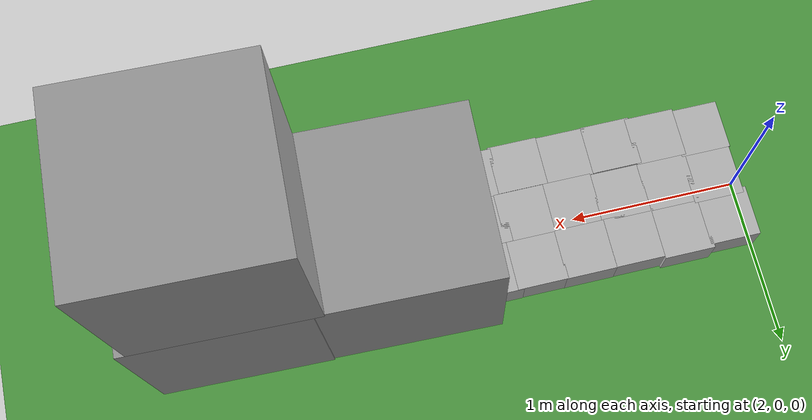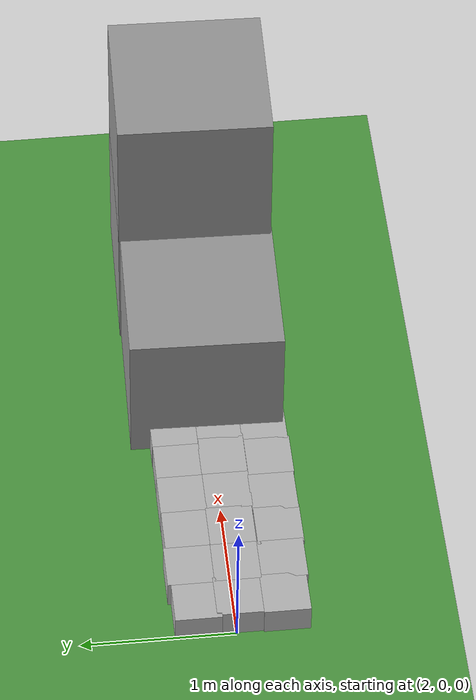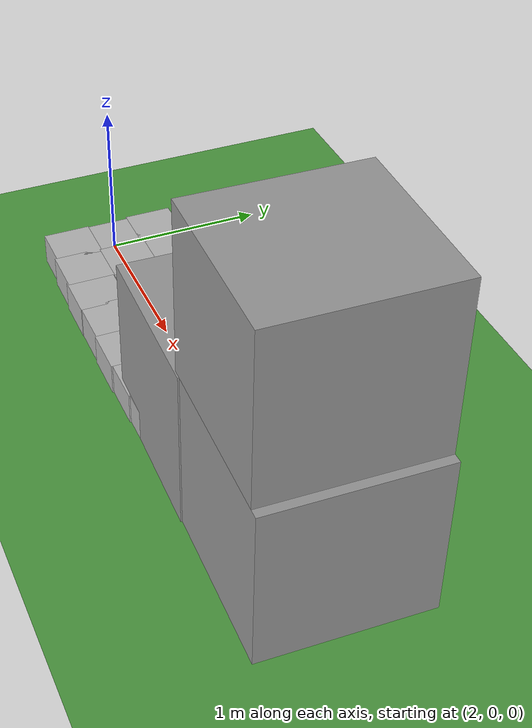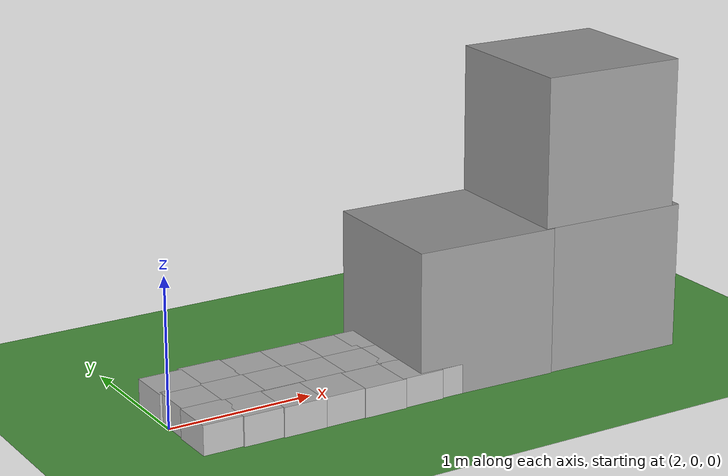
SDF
<sdf version="1.6">
 <world name="default">
  <spherical_coordinates>
   <surface_model>EARTH_WGS84</surface_model>
   <latitude_deg>37.4118</latitude_deg>
   <longitude_deg>-121.996</longitude_deg>
   <elevation>0</elevation>
   <heading_deg>0</heading_deg>
  </spherical_coordinates>
  <physics name="default_physics" default="0" type="ode">
   <ode>
    <solver>
     <type>quick</type>
     <iters>50</iters>
     <sor>1</sor>
     <use_dynamic_moi_rescaling>0</use_dynamic_moi_rescaling>
    </solver>
    <constraints>
     <cfm>0</cfm>
     <erp>0.2</erp>
     <contact_max_correcting_vel>1000</contact_max_correcting_vel>
     <contact_surface_layer>0.001</contact_surface_layer>
    </constraints>
   </ode>
   <max_step_size>0.004</max_step_size>
   <real_time_factor>1</real_time_factor>
   <real_time_update_rate>250</real_time_update_rate>
  </physics>
  <scene><shadows>0</shadows><ambient>0.4 0.4 0.4 1</ambient><background>0.7 0.7 0.7 1</background></scene>
  <light name="sun" type="directional">
   <pose>250 250 600 0 -0 0</pose>
   <diffuse>0.8 0.8 0.8 1</diffuse>
   <specular>0.2 0.2 0.2 1</specular>
   <attenuation>
    <range>1000</range>
    <constant>0.9</constant>
    <linear>0.01</linear>
    <quadratic>0.001</quadratic>
   </attenuation>
   <direction>0 0 -1</direction>
  </light>
  <model name="ground_plane">
   <static>1</static>
   <link name="link">
    <collision name="collision">
     <geometry><plane><normal>0 0 1</normal><size>250 250</size></plane></geometry>
     <surface><friction><ode><mu>1</mu><mu2>1</mu2></ode></friction></surface>
    </collision>
    <visual name="grass">
     <cast_shadows>0</cast_shadows>
     <geometry><plane><normal>0 0 1</normal><size>150 250</size></plane></geometry>
     <material>
      <script><uri>file://media/materials/scripts/Gazebo.material</uri><name>Gazebo/Grass</name></script>
     </material>
    </visual>
   </link>
  </model>
  <gravity>0 0 -9.8066</gravity>
  <magnetic_field>6e-06 2.3e-05 -4.2e-05</magnetic_field>
  <atmosphere type="adiabatic"/>
  <audio><device>default</device></audio>
  <model name="black_cube_30cm">
   <static>1</static>
   <link name="link">
    <pose>0 0 0.1 0 -0 0</pose>
    <inertial>
     <mass>0.5167</mass>
     <inertia>
      <ixx>0.000861167</ixx>
      <ixy>0</ixy>
      <ixz>0</ixz>
      <iyy>0.000861167</iyy>
      <iyz>0</iyz>
      <izz>0.000861167</izz>
     </inertia>
    </inertial>
    <visual name="visual">
     <geometry><box><size>0.3 0.3 0.2</size></box></geometry>
     <material>
      <script>
       <uri>model://black_object/scripts</uri>
       <uri>model://black_object/materials/textures</uri>
       <name>BlackObject/Image</name>
      </script>
     </material>
    </visual>
   </link>
   <pose>2.15495 -0.023439 0 0 -0 0</pose>
  </model>
  <model name="black_cube_30cm_0">
   <static>1</static>
   <link name="link">
    <pose>0 0 0.1 0 -0 0</pose>
    <inertial>
     <mass>0.5167</mass>
     <inertia>
      <ixx>0.000861167</ixx>
      <ixy>0</ixy>
      <ixz>0</ixz>
      <iyy>0.000861167</iyy>
      <iyz>0</iyz>
      <izz>0.000861167</izz>
     </inertia>
    </inertial>
    <visual name="visual">
     <geometry><box><size>0.3 0.3 0.2</size></box></geometry>
     <material>
      <script>
       <uri>model://black_object/scripts</uri>
       <uri>model://black_object/materials/textures</uri>
       <name>BlackObject/Image</name>
      </script>
     </material>
    </visual>
   </link>
   <pose>2.42599 -0.034731 0 0 -0 0</pose>
  </model>
  <model name="black_cube_30cm_1">
   <static>1</static>
   <link name="link">
    <pose>0 0 0.1 0 -0 0</pose>
    <inertial>
     <mass>0.5167</mass>
     <inertia>
      <ixx>0.000861167</ixx>
      <ixy>0</ixy>
      <ixz>0</ixz>
      <iyy>0.000861167</iyy>
      <iyz>0</iyz>
      <izz>0.000861167</izz>
     </inertia>
    </inertial>
    <visual name="visual">
     <geometry><box><size>0.3 0.3 0.2</size></box></geometry>
     <material>
      <script>
       <uri>model://black_object/scripts</uri>
       <uri>model://black_object/materials/textures</uri>
       <name>BlackObject/Image</name>
      </script>
     </material>
    </visual>
   </link>
   <pose>2.72038 -0.037103 0 0 -0 0</pose>
  </model>
  <model name="black_cube_30cm_2">
   <static>1</static>
   <link name="link">
    <pose>0 0 0.1 0 -0 0</pose>
    <inertial>
     <mass>0.5167</mass>
     <inertia>
      <ixx>0.000861167</ixx>
      <ixy>0</ixy>
      <ixz>0</ixz>
      <iyy>0.000861167</iyy>
      <iyz>0</iyz>
      <izz>0.000861167</izz>
     </inertia>
    </inertial>
    <visual name="visual">
     <geometry><box><size>0.3 0.3 0.2</size></box></geometry>
     <material>
      <script>
       <uri>model://black_object/scripts</uri>
       <uri>model://black_object/materials/textures</uri>
       <name>BlackObject/Image</name>
      </script>
     </material>
    </visual>
   </link>
   <pose>3.0113 -0.045083 0 0 -0 0</pose>
  </model>
  <model name="black_cube_30cm_3">
   <static>1</static>
   <link name="link">
    <pose>0 0 0.1 0 -0 0</pose>
    <inertial>
     <mass>0.5167</mass>
     <inertia>
      <ixx>0.000861167</ixx>
      <ixy>0</ixy>
      <ixz>0</ixz>
      <iyy>0.000861167</iyy>
      <iyz>0</iyz>
      <izz>0.000861167</izz>
     </inertia>
    </inertial>
    <visual name="visual">
     <geometry><box><size>0.3 0.3 0.2</size></box></geometry>
     <material>
      <script>
       <uri>model://black_object/scripts</uri>
       <uri>model://black_object/materials/textures</uri>
       <name>BlackObject/Image</name>
      </script>
     </material>
    </visual>
   </link>
   <pose>3.30286 -0.043543 0 0 -0 0</pose>
  </model>
  <model name="black_cube_30cm_4">
   <static>1</static>
   <link name="link">
    <pose>0 0 0.1 0 -0 0</pose>
    <inertial>
     <mass>0.5167</mass>
     <inertia>
      <ixx>0.000861167</ixx>
      <ixy>0</ixy>
      <ixz>0</ixz>
      <iyy>0.000861167</iyy>
      <iyz>0</iyz>
      <izz>0.000861167</izz>
     </inertia>
    </inertial>
    <visual name="visual">
     <geometry><box><size>0.3 0.3 0.2</size></box></geometry>
     <material>
      <script>
       <uri>model://black_object/scripts</uri>
       <uri>model://black_object/materials/textures</uri>
       <name>BlackObject/Image</name>
      </script>
     </material>
    </visual>
   </link>
   <pose>2.13732 0.243558 0 0 -0 0</pose>
  </model>
  <model name="black_cube_30cm_5">
   <static>1</static>
   <link name="link">
    <pose>0 0 0.1 0 -0 0</pose>
    <inertial>
     <mass>0.5167</mass>
     <inertia>
      <ixx>0.000861167</ixx>
      <ixy>0</ixy>
      <ixz>0</ixz>
      <iyy>0.000861167</iyy>
      <iyz>0</iyz>
      <izz>0.000861167</izz>
     </inertia>
    </inertial>
    <visual name="visual">
     <geometry><box><size>0.3 0.3 0.2</size></box></geometry>
     <material>
      <script>
       <uri>model://black_object/scripts</uri>
       <uri>model://black_object/materials/textures</uri>
       <name>BlackObject/Image</name>
      </script>
     </material>
    </visual>
   </link>
   <pose>2.42022 0.264609 0 0 -0 0</pose>
  </model>
  <model name="black_cube_30cm_5_clone">
   <static>1</static>
   <link name="link">
    <pose>0 0 0.1 0 -0 0</pose>
    <inertial>
     <mass>0.5167</mass>
     <inertia>
      <ixx>0.000861167</ixx>
      <ixy>0</ixy>
      <ixz>0</ixz>
      <iyy>0.000861167</iyy>
      <iyz>0</iyz>
      <izz>0.000861167</izz>
     </inertia>
    </inertial>
    <visual name="visual">
     <geometry><box><size>0.3 0.3 0.2</size></box></geometry>
     <material>
      <script>
       <uri>model://black_object/scripts</uri>
       <uri>model://black_object/materials/textures</uri>
       <name>BlackObject/Image</name>
      </script>
     </material>
    </visual>
   </link>
   <pose>2.71085 0.250793 0 0 -0 0</pose>
  </model>
  <model name="black_cube_30cm_5_clone_0">
   <static>1</static>
   <link name="link">
    <pose>0 0 0.1 0 -0 0</pose>
    <inertial>
     <mass>0.5167</mass>
     <inertia>
      <ixx>0.000861167</ixx>
      <ixy>0</ixy>
      <ixz>0</ixz>
      <iyy>0.000861167</iyy>
      <iyz>0</iyz>
      <izz>0.000861167</izz>
     </inertia>
    </inertial>
    <visual name="visual">
     <geometry><box><size>0.3 0.3 0.2</size></box></geometry>
     <material>
      <script>
       <uri>model://black_object/scripts</uri>
       <uri>model://black_object/materials/textures</uri>
       <name>BlackObject/Image</name>
      </script>
     </material>
    </visual>
   </link>
   <pose>3.00932 0.252318 0 0 -0 0</pose>
  </model>
  <model name="black_cube_30cm_5_clone_1">
   <static>1</static>
   <link name="link">
    <pose>0 0 0.1 0 -0 0</pose>
    <inertial>
     <mass>0.5167</mass>
     <inertia>
      <ixx>0.000861167</ixx>
      <ixy>0</ixy>
      <ixz>0</ixz>
      <iyy>0.000861167</iyy>
      <iyz>0</iyz>
      <izz>0.000861167</izz>
     </inertia>
    </inertial>
    <visual name="visual">
     <geometry><box><size>0.3 0.3 0.2</size></box></geometry>
     <material>
      <script>
       <uri>model://black_object/scripts</uri>
       <uri>model://black_object/materials/textures</uri>
       <name>BlackObject/Image</name>
      </script>
     </material>
    </visual>
   </link>
   <pose>3.30026 0.251176 0 0 -0 0</pose>
  </model>
  <model name="black_cube_30cm_5_clone_2">
   <static>1</static>
   <link name="link">
    <pose>0 0 0.1 0 -0 0</pose>
    <inertial>
     <mass>0.5167</mass>
     <inertia>
      <ixx>0.000861167</ixx>
      <ixy>0</ixy>
      <ixz>0</ixz>
      <iyy>0.000861167</iyy>
      <iyz>0</iyz>
      <izz>0.000861167</izz>
     </inertia>
    </inertial>
    <visual name="visual">
     <geometry><box><size>0.3 0.3 0.2</size></box></geometry>
     <material>
      <script>
       <uri>model://black_object/scripts</uri>
       <uri>model://black_object/materials/textures</uri>
       <name>BlackObject/Image</name>
      </script>
     </material>
    </visual>
   </link>
   <pose>2.14623 -0.321855 0 0 -0 0</pose>
  </model>
  <model name="black_cube_30cm_5_clone_3">
   <static>1</static>
   <link name="link">
    <pose>0 0 0.1 0 -0 0</pose>
    <inertial>
     <mass>0.5167</mass>
     <inertia>
      <ixx>0.000861167</ixx>
      <ixy>0</ixy>
      <ixz>0</ixz>
      <iyy>0.000861167</iyy>
      <iyz>0</iyz>
      <izz>0.000861167</izz>
     </inertia>
    </inertial>
    <visual name="visual">
     <geometry><box><size>0.3 0.3 0.2</size></box></geometry>
     <material>
      <script>
       <uri>model://black_object/scripts</uri>
       <uri>model://black_object/materials/textures</uri>
       <name>BlackObject/Image</name>
      </script>
     </material>
    </visual>
   </link>
   <pose>2.418 -0.334477 0 0 -0 0</pose>
  </model>
  <model name="black_cube_30cm_5_clone_4">
   <static>1</static>
   <link name="link">
    <pose>0 0 0.1 0 -0 0</pose>
    <inertial>
     <mass>0.5167</mass>
     <inertia>
      <ixx>0.000861167</ixx>
      <ixy>0</ixy>
      <ixz>0</ixz>
      <iyy>0.000861167</iyy>
      <iyz>0</iyz>
      <izz>0.000861167</izz>
     </inertia>
    </inertial>
    <visual name="visual">
     <geometry><box><size>0.3 0.3 0.2</size></box></geometry>
     <material>
      <script>
       <uri>model://black_object/scripts</uri>
       <uri>model://black_object/materials/textures</uri>
       <name>BlackObject/Image</name>
      </script>
     </material>
    </visual>
   </link>
   <pose>2.69218 -0.341914 0 0 -0 0</pose>
  </model>
  <model name="black_cube_30cm_5_clone_5">
   <static>1</static>
   <link name="link">
    <pose>0 0 0.1 0 -0 0</pose>
    <inertial>
     <mass>0.5167</mass>
     <inertia>
      <ixx>0.000861167</ixx>
      <ixy>0</ixy>
      <ixz>0</ixz>
      <iyy>0.000861167</iyy>
      <iyz>0</iyz>
      <izz>0.000861167</izz>
     </inertia>
    </inertial>
    <visual name="visual">
     <geometry><box><size>0.3 0.3 0.2</size></box></geometry>
     <material>
      <script>
       <uri>model://black_object/scripts</uri>
       <uri>model://black_object/materials/textures</uri>
       <name>BlackObject/Image</name>
      </script>
     </material>
    </visual>
   </link>
   <pose>2.96969 -0.338913 0 0 -0 0</pose>
  </model>
  <model name="black_cube_30cm_5_clone_6">
   <static>1</static>
   <link name="link">
    <pose>0 0 0.1 0 -0 0</pose>
    <inertial>
     <mass>0.5167</mass>
     <inertia>
      <ixx>0.000861167</ixx>
      <ixy>0</ixy>
      <ixz>0</ixz>
      <iyy>0.000861167</iyy>
      <iyz>0</iyz>
      <izz>0.000861167</izz>
     </inertia>
    </inertial>
    <visual name="visual">
     <geometry><box><size>0.3 0.3 0.2</size></box></geometry>
     <material>
      <script>
       <uri>model://black_object/scripts</uri>
       <uri>model://black_object/materials/textures</uri>
       <name>BlackObject/Image</name>
      </script>
     </material>
    </visual>
   </link>
   <pose>3.26917 -0.344627 0 0 -0 0</pose>
  </model>
  <model name="black_cube_30cm_5_clone_7">
   <static>1</static>
   <link name="link">
    <pose>0 0 0.1 0 -0 0</pose>
    <inertial>
     <mass>0.5167</mass>
     <inertia>
      <ixx>0.000861167</ixx>
      <ixy>0</ixy>
      <ixz>0</ixz>
      <iyy>0.000861167</iyy>
      <iyz>0</iyz>
      <izz>0.000861167</izz>
     </inertia>
    </inertial>
    <visual name="visual">
     <geometry><box><size>0.3 0.3 0.2</size></box></geometry>
     <material>
      <script>
       <uri>model://black_object/scripts</uri>
       <uri>model://black_object/materials/textures</uri>
       <name>BlackObject/Image</name>
      </script>
     </material>
    </visual>
   </link>
   <pose>3.56393 0.25311 0 0 -0 0</pose>
  </model>
  <model name="black_cube_30cm_5_clone_8">
   <static>1</static>
   <link name="link">
    <pose>0 0 0.1 0 -0 0</pose>
    <inertial>
     <mass>0.5167</mass>
     <inertia>
      <ixx>0.000861167</ixx>
      <ixy>0</ixy>
      <ixz>0</ixz>
      <iyy>0.000861167</iyy>
      <iyz>0</iyz>
      <izz>0.000861167</izz>
     </inertia>
    </inertial>
    <visual name="visual">
     <geometry><box><size>0.3 0.3 0.2</size></box></geometry>
     <material>
      <script>
       <uri>model://black_object/scripts</uri>
       <uri>model://black_object/materials/textures</uri>
       <name>BlackObject/Image</name>
      </script>
     </material>
    </visual>
   </link>
   <pose>3.55694 -0.044108 0 0 -0 0</pose>
  </model>
  <model name="black_cube_30cm_5_clone_9">
   <static>1</static>
   <link name="link">
    <pose>0 0 0.1 0 -0 0</pose>
    <inertial>
     <mass>0.5167</mass>
     <inertia>
      <ixx>0.000861167</ixx>
      <ixy>0</ixy>
      <ixz>0</ixz>
      <iyy>0.000861167</iyy>
      <iyz>0</iyz>
      <izz>0.000861167</izz>
     </inertia>
    </inertial>
    <visual name="visual">
     <geometry><box><size>0.3 0.3 0.2</size></box></geometry>
     <material>
      <script>
       <uri>model://black_object/scripts</uri>
       <uri>model://black_object/materials/textures</uri>
       <name>BlackObject/Image</name>
      </script>
     </material>
    </visual>
   </link>
   <pose>3.55085 -0.336315 0 0 -0 0</pose>
  </model>
  <model name="black_cube_30cm_5_clone_10">
   <static>1</static>
   <link name="link">
    <pose>0 0 0.1 0 -0 0</pose>
    <inertial>
     <mass>0.5167</mass>
     <inertia>
      <ixx>0.000861167</ixx>
      <ixy>0</ixy>
      <ixz>0</ixz>
      <iyy>0.000861167</iyy>
      <iyz>0</iyz>
      <izz>0.000861167</izz>
     </inertia>
    </inertial>
    <visual name="visual">
     <geometry><box><size>0.3 0.3 0.2</size></box></geometry>
     <material>
      <script>
       <uri>model://black_object/scripts</uri>
       <uri>model://black_object/materials/textures</uri>
       <name>BlackObject/Image</name>
      </script>
     </material>
    </visual>
   </link>
   <pose>3.83083 0.265658 0 0 -0 0</pose>
  </model>
  <model name="black_cube_30cm_5_clone_11">
   <static>1</static>
   <link name="link">
    <pose>0 0 0.1 0 -0 0</pose>
    <inertial>
     <mass>0.5167</mass>
     <inertia>
      <ixx>0.000861167</ixx>
      <ixy>0</ixy>
      <ixz>0</ixz>
      <iyy>0.000861167</iyy>
      <iyz>0</iyz>
      <izz>0.000861167</izz>
     </inertia>
    </inertial>
    <visual name="visual">
     <geometry><box><size>0.3 0.3 0.2</size></box></geometry>
     <material>
      <script>
       <uri>model://black_object/scripts</uri>
       <uri>model://black_object/materials/textures</uri>
       <name>BlackObject/Image</name>
      </script>
     </material>
    </visual>
   </link>
   <pose>3.83561 -0.028779 0 0 -0 0</pose>
  </model>
  <model name="black_cube_30cm_5_clone_12">
   <static>1</static>
   <link name="link">
    <pose>0 0 0.1 0 -0 0</pose>
    <inertial>
     <mass>0.5167</mass>
     <inertia>
      <ixx>0.000861167</ixx>
      <ixy>0</ixy>
      <ixz>0</ixz>
      <iyy>0.000861167</iyy>
      <iyz>0</iyz>
      <izz>0.000861167</izz>
     </inertia>
    </inertial>
    <visual name="visual">
     <geometry><box><size>0.3 0.3 0.2</size></box></geometry>
     <material>
      <script>
       <uri>model://black_object/scripts</uri>
       <uri>model://black_object/materials/textures</uri>
       <name>BlackObject/Image</name>
      </script>
     </material>
    </visual>
   </link>
   <pose>3.83412 -0.32796 0 0 -0 0</pose>
  </model>
  <model name="black_cube_30cm_5_clone_13">
   <static>1</static>
   <link name="link">
    <pose>0 0 0.1 0 -0 0</pose>
    <inertial>
     <mass>0.5167</mass>
     <inertia>
      <ixx>0.000861167</ixx>
      <ixy>0</ixy>
      <ixz>0</ixz>
      <iyy>0.000861167</iyy>
      <iyz>0</iyz>
      <izz>0.000861167</izz>
     </inertia>
    </inertial>
    <visual name="visual">
     <geometry><box><size>0.3 0.3 0.2</size></box></geometry>
     <material>
      <script>
       <uri>model://black_object/scripts</uri>
       <uri>model://black_object/materials/textures</uri>
       <name>BlackObject/Image</name>
      </script>
     </material>
    </visual>
   </link>
   <pose>4.11355 0.265111 0 0 -0 0</pose>
  </model>
  <model name="black_cube_30cm_5_clone_14">
   <static>1</static>
   <link name="link">
    <pose>0 0 0.1 0 -0 0</pose>
    <inertial>
     <mass>0.5167</mass>
     <inertia>
      <ixx>0.000861167</ixx>
      <ixy>0</ixy>
      <ixz>0</ixz>
      <iyy>0.000861167</iyy>
      <iyz>0</iyz>
      <izz>0.000861167</izz>
     </inertia>
    </inertial>
    <visual name="visual">
     <geometry><box><size>0.3 0.3 0.2</size></box></geometry>
     <material>
      <script>
       <uri>model://black_object/scripts</uri>
       <uri>model://black_object/materials/textures</uri>
       <name>BlackObject/Image</name>
      </script>
     </material>
    </visual>
   </link>
   <pose>4.09866 -0.016097 0 0 -0 0</pose>
  </model>
  <model name="black_cube_30cm_5_clone_15">
   <static>1</static>
   <link name="link">
    <pose>0 0 0.1 0 -0 0</pose>
    <inertial>
     <mass>0.5167</mass>
     <inertia>
      <ixx>0.000861167</ixx>
      <ixy>0</ixy>
      <ixz>0</ixz>
      <iyy>0.000861167</iyy>
      <iyz>0</iyz>
      <izz>0.000861167</izz>
     </inertia>
    </inertial>
    <visual name="visual">
     <geometry><box><size>0.3 0.3 0.2</size></box></geometry>
     <material>
      <script>
       <uri>model://black_object/scripts</uri>
       <uri>model://black_object/materials/textures</uri>
       <name>BlackObject/Image</name>
      </script>
     </material>
    </visual>
   </link>
   <pose>4.09188 -0.315167 0 0 -0 0</pose>
  </model>
  <model name="black_cube_30cm_5_clone_16">
   <static>1</static>
   <link name="link">
    <pose>0 0 0.1 0 -0 0</pose>
    <inertial>
     <mass>0.5167</mass>
     <inertia>
      <ixx>0.000861167</ixx>
      <ixy>0</ixy>
      <ixz>0</ixz>
      <iyy>0.000861167</iyy>
      <iyz>0</iyz>
      <izz>0.000861167</izz>
     </inertia>
    </inertial>
    <visual name="visual">
     <geometry><box><size>0.3 0.3 0.2</size></box></geometry>
     <material>
      <script>
       <uri>model://black_object/scripts</uri>
       <uri>model://black_object/materials/textures</uri>
       <name>BlackObject/Image</name>
      </script>
     </material>
    </visual>
   </link>
   <pose>4.36883 0.258143 0 0 -0 0</pose>
  </model>
  <model name="black_cube_30cm_5_clone_17">
   <static>1</static>
   <link name="link">
    <pose>0 0 0.1 0 -0 0</pose>
    <inertial>
     <mass>0.5167</mass>
     <inertia>
      <ixx>0.000861167</ixx>
      <ixy>0</ixy>
      <ixz>0</ixz>
      <iyy>0.000861167</iyy>
      <iyz>0</iyz>
      <izz>0.000861167</izz>
     </inertia>
    </inertial>
    <visual name="visual">
     <geometry><box><size>0.3 0.3 0.2</size></box></geometry>
     <material>
      <script>
       <uri>model://black_object/scripts</uri>
       <uri>model://black_object/materials/textures</uri>
       <name>BlackObject/Image</name>
      </script>
     </material>
    </visual>
   </link>
   <pose>4.36851 -0.03701 0 0 -0 0</pose>
  </model>
  <model name="black_cube_30cm_5_clone_18">
   <static>1</static>
   <link name="link">
    <pose>0 0 0.1 0 -0 0</pose>
    <inertial>
     <mass>0.5167</mass>
     <inertia>
      <ixx>0.000861167</ixx>
      <ixy>0</ixy>
      <ixz>0</ixz>
      <iyy>0.000861167</iyy>
      <iyz>0</iyz>
      <izz>0.000861167</izz>
     </inertia>
    </inertial>
    <visual name="visual">
     <geometry><box><size>0.3 0.3 0.2</size></box></geometry>
     <material>
      <script>
       <uri>model://black_object/scripts</uri>
       <uri>model://black_object/materials/textures</uri>
       <name>BlackObject/Image</name>
      </script>
     </material>
    </visual>
   </link>
   <pose>4.38635 -0.324447 0 0 -0 0</pose>
  </model>
  <model name="unit_box_0">
   <pose>4.05601 0.016799 0.5 0 0 -0.027028</pose>
   <link name="link">
    <inertial>
     <mass>1</mass>
     <inertia>
      <ixx>0.166667</ixx>
      <ixy>0</ixy>
      <ixz>0</ixz>
      <iyy>0.166667</iyy>
      <iyz>0</iyz>
      <izz>0.166667</izz>
     </inertia>
    </inertial>
    <collision name="collision"><geometry><box><size>1 1 1</size></box></geometry></collision>
    <visual name="visual">
     <geometry><box><size>1 1 1</size></box></geometry>
     <material>
      <script><name>Gazebo/Grey</name><uri>file://media/materials/scripts/gazebo.material</uri></script>
     </material>
    </visual>
   </link>
  </model>
  <model name="unit_box_0_clone">
   <pose>5.05589 -0.001372 0.499986 -2.7e-05 1e-06 -0.027031</pose>
   <link name="link">
    <inertial>
     <mass>1</mass>
     <inertia>
      <ixx>0.166667</ixx>
      <ixy>0</ixy>
      <ixz>0</ixz>
      <iyy>0.166667</iyy>
      <iyz>0</iyz>
      <izz>0.166667</izz>
     </inertia>
    </inertial>
    <collision name="collision"><geometry><box><size>1 1 1</size></box></geometry></collision>
    <visual name="visual">
     <geometry><box><size>1 1 1</size></box></geometry>
     <material>
      <script><name>Gazebo/Grey</name><uri>file://media/materials/scripts/gazebo.material</uri></script>
     </material>
    </visual>
   </link>
  </model>
  <model name="unit_box_0_clone_0">
   <pose>5.00116 -7.8e-05 1.49996 2.2e-05 -0 -0.027026</pose>
   <link name="link">
    <inertial>
     <mass>1</mass>
     <inertia>
      <ixx>0.166667</ixx>
      <ixy>0</ixy>
      <ixz>0</ixz>
      <iyy>0.166667</iyy>
      <iyz>0</iyz>
      <izz>0.166667</izz>
     </inertia>
    </inertial>
    <collision name="collision"><geometry><box><size>1 1 1</size></box></geometry></collision>
    <visual name="visual">
     <geometry><box><size>1 1 1</size></box></geometry>
     <material>
      <script><name>Gazebo/Grey</name><uri>file://media/materials/scripts/gazebo.material</uri></script>
     </material>
    </visual>
   </link>
  </model>
 </world>
</sdf>
